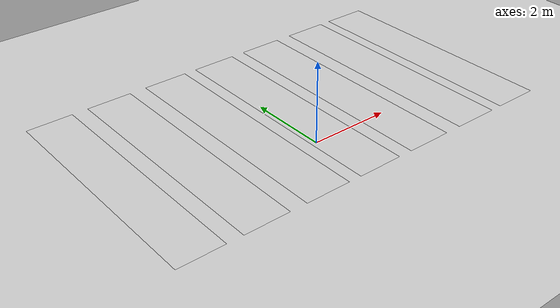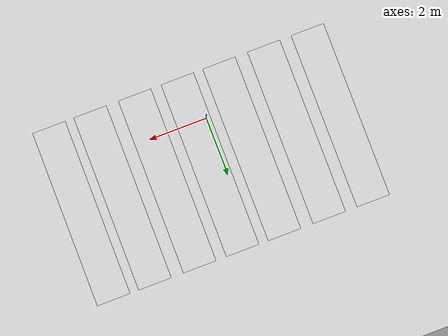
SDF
<?xml version="1.0"?>
<sdf version="1.4">
  <world name="default">

<scene>
  <sky>
    <clouds>
      <speed>12</speed>
    </clouds>
  </sky>
</scene>

    <include>
      <uri>model://ground_plane</uri>
    </include>
    <include>
      <uri>model://sun</uri>
    </include>

    <model name="Zebrastreifen">
    <static>true</static>
	<link name="body">
	<inertial>
	 <pose>1 2 5  2 2 2</pose>
	 <mass>30.0</mass>

          </inertial>

        <collision name="visual">
	  <geometry>
            <mesh><uri>file://Zebrastreifen.dae</uri></mesh>
          </geometry>

        </collision>

        <visual name="visual">
	  <geometry>
            <mesh><uri>file://Zebrastreifen.dae</uri></mesh>
          </geometry>

        </visual>
      </link>
    </model>
  </world>
</sdf>
